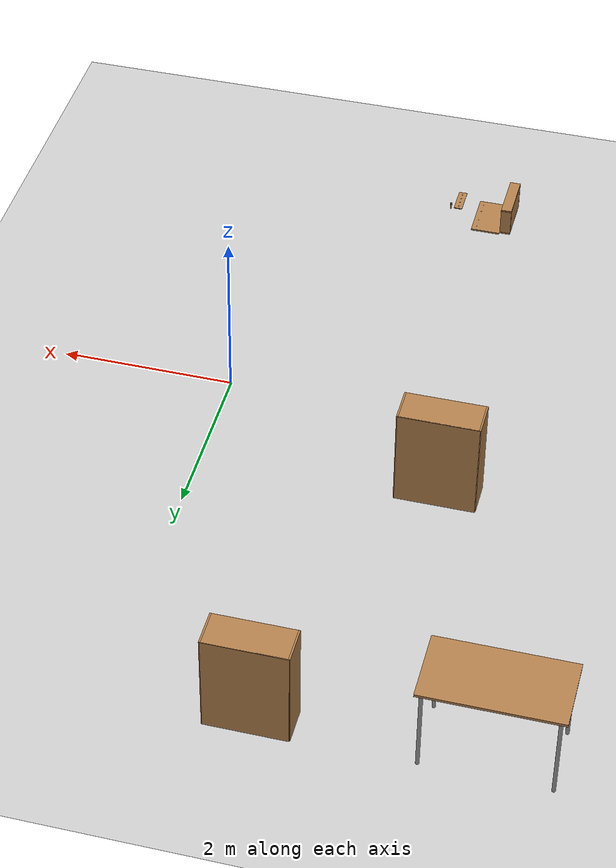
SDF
<sdf version="1.6">
 <world name="default">
  <model name="ground_plane">
   <static>1</static>
   <link name="link">
    <collision name="collision">
     <geometry><plane><normal>0 0 1</normal><size>100 100</size></plane></geometry>
     <surface>
      <contact><collide_bitmask>65535</collide_bitmask></contact>
      <friction><ode><mu>100</mu><mu2>50</mu2></ode></friction>
     </surface>
    </collision>
    <visual name="visual">
     <cast_shadows>0</cast_shadows>
     <geometry><plane><normal>0 0 1</normal><size>100 100</size></plane></geometry>
     <material>
      <script><uri>file://media/materials/scripts/gazebo.material</uri><name>Gazebo/Grey</name></script>
     </material>
    </visual>
   </link>
  </model>
  <model name="bookshelf">
   <static>1</static>
   <link name="link">
    <inertial><mass>1</mass></inertial>
    <collision name="back">
     <pose>0 0.005 0.6 0 -0 0</pose>
     <geometry><box><size>0.9 0.01 1.2</size></box></geometry>
    </collision>
    <visual name="visual1">
     <pose>0 0.005 0.6 0 -0 0</pose>
     <geometry><box><size>0.9 0.01 1.2</size></box></geometry>
     <material>
      <script><uri>file://media/materials/scripts/gazebo.material</uri><name>Gazebo/Wood</name></script>
     </material>
    </visual>
    <collision name="left_side">
     <pose>0.45 -0.195 0.6 0 -0 0</pose>
     <geometry><box><size>0.02 0.4 1.2</size></box></geometry>
    </collision>
    <visual name="visual2">
     <pose>0.45 -0.195 0.6 0 -0 0</pose>
     <geometry><box><size>0.02 0.4 1.2</size></box></geometry>
     <material>
      <script><uri>file://media/materials/scripts/gazebo.material</uri><name>Gazebo/Wood</name></script>
     </material>
    </visual>
    <collision name="right_side">
     <pose>-0.45 -0.195 0.6 0 -0 0</pose>
     <geometry><box><size>0.02 0.4 1.2</size></box></geometry>
    </collision>
    <visual name="visual3">
     <pose>-0.45 -0.195 0.6 0 -0 0</pose>
     <geometry><box><size>0.02 0.4 1.2</size></box></geometry>
     <material>
      <script><uri>file://media/materials/scripts/gazebo.material</uri><name>Gazebo/Wood</name></script>
     </material>
    </visual>
    <collision name="bottom">
     <pose>0 -0.195 0.03 0 -0 0</pose>
     <geometry><box><size>0.88 0.4 0.06</size></box></geometry>
    </collision>
    <visual name="visual4">
     <pose>0 -0.195 0.03 0 -0 0</pose>
     <geometry><box><size>0.88 0.4 0.06</size></box></geometry>
     <material>
      <script><uri>file://media/materials/scripts/gazebo.material</uri><name>Gazebo/Wood</name></script>
     </material>
    </visual>
    <collision name="top">
     <pose>0 -0.195 1.19 0 -0 0</pose>
     <geometry><box><size>0.88 0.4 0.02</size></box></geometry>
    </collision>
    <visual name="visual5">
     <pose>0 -0.195 1.19 0 -0 0</pose>
     <geometry><box><size>0.88 0.4 0.02</size></box></geometry>
     <material>
      <script><uri>file://media/materials/scripts/gazebo.material</uri><name>Gazebo/Wood</name></script>
     </material>
    </visual>
    <collision name="low_shelf">
     <pose>0 -0.195 0.43 0 -0 0</pose>
     <geometry><box><size>0.88 0.4 0.02</size></box></geometry>
    </collision>
    <visual name="visual6">
     <pose>0 -0.195 0.43 0 -0 0</pose>
     <geometry><box><size>0.88 0.4 0.02</size></box></geometry>
     <material>
      <script><uri>file://media/materials/scripts/gazebo.material</uri><name>Gazebo/Wood</name></script>
     </material>
    </visual>
    <collision name="high_shelf">
     <pose>0 -0.195 0.8 0 -0 0</pose>
     <geometry><box><size>0.88 0.4 0.02</size></box></geometry>
    </collision>
    <visual name="visual7">
     <pose>0 -0.195 0.8 0 -0 0</pose>
     <geometry><box><size>0.88 0.4 0.02</size></box></geometry>
     <material>
      <script><uri>file://media/materials/scripts/gazebo.material</uri><name>Gazebo/Wood</name></script>
     </material>
    </visual>
   </link>
   <pose>-2.68628 1.36216 0 0 -0 0</pose>
  </model>
  <model name="bookshelf_1">
   <static>1</static>
   <link name="link">
    <inertial><mass>1</mass></inertial>
    <collision name="back">
     <pose>0 0.005 0.6 0 -0 0</pose>
     <geometry><box><size>0.9 0.01 1.2</size></box></geometry>
    </collision>
    <visual name="visual1">
     <pose>0 0.005 0.6 0 -0 0</pose>
     <geometry><box><size>0.9 0.01 1.2</size></box></geometry>
     <material>
      <script><uri>file://media/materials/scripts/gazebo.material</uri><name>Gazebo/Wood</name></script>
     </material>
    </visual>
    <collision name="left_side">
     <pose>0.45 -0.195 0.6 0 -0 0</pose>
     <geometry><box><size>0.02 0.4 1.2</size></box></geometry>
    </collision>
    <visual name="visual2">
     <pose>0.45 -0.195 0.6 0 -0 0</pose>
     <geometry><box><size>0.02 0.4 1.2</size></box></geometry>
     <material>
      <script><uri>file://media/materials/scripts/gazebo.material</uri><name>Gazebo/Wood</name></script>
     </material>
    </visual>
    <collision name="right_side">
     <pose>-0.45 -0.195 0.6 0 -0 0</pose>
     <geometry><box><size>0.02 0.4 1.2</size></box></geometry>
    </collision>
    <visual name="visual3">
     <pose>-0.45 -0.195 0.6 0 -0 0</pose>
     <geometry><box><size>0.02 0.4 1.2</size></box></geometry>
     <material>
      <script><uri>file://media/materials/scripts/gazebo.material</uri><name>Gazebo/Wood</name></script>
     </material>
    </visual>
    <collision name="bottom">
     <pose>0 -0.195 0.03 0 -0 0</pose>
     <geometry><box><size>0.88 0.4 0.06</size></box></geometry>
    </collision>
    <visual name="visual4">
     <pose>0 -0.195 0.03 0 -0 0</pose>
     <geometry><box><size>0.88 0.4 0.06</size></box></geometry>
     <material>
      <script><uri>file://media/materials/scripts/gazebo.material</uri><name>Gazebo/Wood</name></script>
     </material>
    </visual>
    <collision name="top">
     <pose>0 -0.195 1.19 0 -0 0</pose>
     <geometry><box><size>0.88 0.4 0.02</size></box></geometry>
    </collision>
    <visual name="visual5">
     <pose>0 -0.195 1.19 0 -0 0</pose>
     <geometry><box><size>0.88 0.4 0.02</size></box></geometry>
     <material>
      <script><uri>file://media/materials/scripts/gazebo.material</uri><name>Gazebo/Wood</name></script>
     </material>
    </visual>
    <collision name="low_shelf">
     <pose>0 -0.195 0.43 0 -0 0</pose>
     <geometry><box><size>0.88 0.4 0.02</size></box></geometry>
    </collision>
    <visual name="visual6">
     <pose>0 -0.195 0.43 0 -0 0</pose>
     <geometry><box><size>0.88 0.4 0.02</size></box></geometry>
     <material>
      <script><uri>file://media/materials/scripts/gazebo.material</uri><name>Gazebo/Wood</name></script>
     </material>
    </visual>
    <collision name="high_shelf">
     <pose>0 -0.195 0.8 0 -0 0</pose>
     <geometry><box><size>0.88 0.4 0.02</size></box></geometry>
    </collision>
    <visual name="visual7">
     <pose>0 -0.195 0.8 0 -0 0</pose>
     <geometry><box><size>0.88 0.4 0.02</size></box></geometry>
     <material>
      <script><uri>file://media/materials/scripts/gazebo.material</uri><name>Gazebo/Wood</name></script>
     </material>
    </visual>
   </link>
   <pose>-1.56619 5.02247 0 0 -0 0</pose>
  </model>
  <model name="wooden_peg">
   <link name="link">
    <pose>0 0 0.04 0 -0 0</pose>
    <inertial>
     <mass>0.0175</mass>
     <inertia>
      <ixx>9.74923e-06</ixx>
      <ixy>0</ixy>
      <ixz>0</ixz>
      <iyy>9.74923e-06</iyy>
      <iyz>0</iyz>
      <izz>8.31797e-07</izz>
     </inertia>
    </inertial>
    <collision name="collision">
     <geometry><cylinder><radius>0.00975</radius><length>0.08</length></cylinder></geometry>
     <surface>
      <contact>
       <poissons_ratio>0.347</poissons_ratio>
       <elastic_modulus>8.8e+09</elastic_modulus>
       <ode><kp>100000</kp><kd>100</kd><max_vel>100</max_vel><min_depth>0.001</min_depth></ode>
      </contact>
      <friction>
       <torsional>
        <coefficient>1</coefficient>
        <use_patch_radius>0</use_patch_radius>
        <surface_radius>0.01</surface_radius>
       </torsional>
      </friction>
     </surface>
    </collision>
    <visual name="visual">
     <geometry><cylinder><radius>0.00975</radius><length>0.08</length></cylinder></geometry>
     <material>
      <script><uri>file://media/materials/scripts/gazebo.material</uri><name>Gazebo/Wood</name></script>
     </material>
    </visual>
   </link>
   <pose>-1.75369 -3.9029 -0.001 0 -0 0</pose>
  </model>
  <model name="wooden_case">
   <link name="base">
    <pose>0 0 0.024 0 -0 0</pose>
    <inertial>
     <pose>-0.022184 0 0.171592 0 -0 0</pose>
     <mass>3.96264</mass>
     <inertia>
      <ixx>0.213536</ixx>
      <ixy>0</ixy>
      <ixz>0.000779377</ixz>
      <iyy>0.0708943</iyy>
      <iyz>0</iyz>
      <izz>0.154604</izz>
     </inertia>
    </inertial>
    <collision name="collision_back">
     <pose>-0.053975 0 0.1778 0 -0 0</pose>
     <geometry><box><size>0.01905 0.5461 0.3175</size></box></geometry>
     <surface>
      <contact>
       <poissons_ratio>0.347</poissons_ratio>
       <elastic_modulus>8.8e+09</elastic_modulus>
       <ode><kp>100000</kp><kd>100</kd><max_vel>100</max_vel><min_depth>0.001</min_depth></ode>
      </contact>
      <friction>
       <torsional>
        <coefficient>1</coefficient>
        <use_patch_radius>0</use_patch_radius>
        <surface_radius>0.01</surface_radius>
       </torsional>
      </friction>
     </surface>
    </collision>
    <visual name="visual_back">
     <pose>-0.053975 0 0.1778 0 -0 0</pose>
     <geometry><box><size>0.01905 0.5461 0.3175</size></box></geometry>
     <material>
      <script><uri>file://media/materials/scripts/gazebo.material</uri><name>Gazebo/Wood</name></script>
     </material>
    </visual>
    <collision name="collision_bottom">
     <pose>0 0 0.009525 0 -0 0</pose>
     <geometry><box><size>0.127 0.5842 0.01905</size></box></geometry>
     <surface>
      <contact>
       <poissons_ratio>0.347</poissons_ratio>
       <elastic_modulus>8.8e+09</elastic_modulus>
       <ode><kp>100000</kp><kd>100</kd><max_vel>100</max_vel><min_depth>0.001</min_depth></ode>
      </contact>
      <friction>
       <torsional>
        <coefficient>1</coefficient>
        <use_patch_radius>0</use_patch_radius>
        <surface_radius>0.01</surface_radius>
       </torsional>
      </friction>
     </surface>
    </collision>
    <visual name="visual_bottom">
     <pose>0 0 0.009525 0 -0 0</pose>
     <geometry><box><size>0.127 0.5842 0.01905</size></box></geometry>
     <material>
      <script><uri>file://media/materials/scripts/gazebo.material</uri><name>Gazebo/Wood</name></script>
     </material>
    </visual>
    <collision name="collision_top">
     <pose>0 0 0.346075 0 -0 0</pose>
     <geometry><box><size>0.127 0.5842 0.01905</size></box></geometry>
     <surface>
      <contact>
       <poissons_ratio>0.347</poissons_ratio>
       <elastic_modulus>8.8e+09</elastic_modulus>
       <ode><kp>100000</kp><kd>100</kd><max_vel>100</max_vel><min_depth>0.001</min_depth></ode>
      </contact>
      <friction>
       <torsional>
        <coefficient>1</coefficient>
        <use_patch_radius>0</use_patch_radius>
        <surface_radius>0.01</surface_radius>
       </torsional>
      </friction>
     </surface>
    </collision>
    <visual name="visual_top">
     <pose>0 0 0.346075 0 -0 0</pose>
     <geometry><box><size>0.127 0.5842 0.01905</size></box></geometry>
     <material>
      <script><uri>file://media/materials/scripts/gazebo.material</uri><name>Gazebo/Wood</name></script>
     </material>
    </visual>
    <collision name="collision_left">
     <pose>0 -0.282575 0.1778 0 -0 0</pose>
     <geometry><box><size>0.127 0.01905 0.3175</size></box></geometry>
     <surface>
      <contact>
       <poissons_ratio>0.347</poissons_ratio>
       <elastic_modulus>8.8e+09</elastic_modulus>
       <ode><kp>100000</kp><kd>100</kd><max_vel>100</max_vel><min_depth>0.001</min_depth></ode>
      </contact>
      <friction>
       <torsional>
        <coefficient>1</coefficient>
        <use_patch_radius>0</use_patch_radius>
        <surface_radius>0.01</surface_radius>
       </torsional>
      </friction>
     </surface>
    </collision>
    <visual name="visual_left">
     <pose>0 -0.282575 0.1778 0 -0 0</pose>
     <geometry><box><size>0.127 0.01905 0.3175</size></box></geometry>
     <material>
      <script><uri>file://media/materials/scripts/gazebo.material</uri><name>Gazebo/Wood</name></script>
     </material>
    </visual>
    <collision name="collision_right">
     <pose>0 0.282575 0.1778 0 -0 0</pose>
     <geometry><box><size>0.127 0.01905 0.3175</size></box></geometry>
     <surface>
      <contact>
       <poissons_ratio>0.347</poissons_ratio>
       <elastic_modulus>8.8e+09</elastic_modulus>
       <ode><kp>100000</kp><kd>100</kd><max_vel>100</max_vel><min_depth>0.001</min_depth></ode>
      </contact>
      <friction>
       <torsional>
        <coefficient>1</coefficient>
        <use_patch_radius>0</use_patch_radius>
        <surface_radius>0.01</surface_radius>
       </torsional>
      </friction>
     </surface>
    </collision>
    <visual name="visual_right">
     <pose>0 0.282575 0.1778 0 -0 0</pose>
     <geometry><box><size>0.127 0.01905 0.3175</size></box></geometry>
     <material>
      <script><uri>file://media/materials/scripts/gazebo.material</uri><name>Gazebo/Wood</name></script>
     </material>
    </visual>
    <collision name="collision_block_left">
     <pose>0.0095 -0.2151 -0.012 0 -0 0</pose>
     <geometry><box><size>0.108 0.05 0.024</size></box></geometry>
     <surface>
      <contact>
       <poissons_ratio>0.347</poissons_ratio>
       <elastic_modulus>8.8e+09</elastic_modulus>
       <ode><kp>100000</kp><kd>100</kd><max_vel>100</max_vel><min_depth>0.001</min_depth></ode>
      </contact>
      <friction>
       <torsional>
        <coefficient>1</coefficient>
        <use_patch_radius>0</use_patch_radius>
        <surface_radius>0.01</surface_radius>
       </torsional>
      </friction>
     </surface>
    </collision>
    <visual name="visual_block_left">
     <pose>0.0095 -0.2151 -0.012 0 -0 0</pose>
     <geometry><box><size>0.108 0.05 0.024</size></box></geometry>
     <material>
      <script><uri>file://media/materials/scripts/gazebo.material</uri><name>Gazebo/Wood</name></script>
     </material>
    </visual>
    <collision name="collision_block_right">
     <pose>0.0095 0.2151 -0.012 0 -0 0</pose>
     <geometry><box><size>0.108 0.05 0.024</size></box></geometry>
     <surface>
      <contact>
       <poissons_ratio>0.347</poissons_ratio>
       <elastic_modulus>8.8e+09</elastic_modulus>
       <ode><kp>100000</kp><kd>100</kd><max_vel>100</max_vel><min_depth>0.001</min_depth></ode>
      </contact>
      <friction>
       <torsional>
        <coefficient>1</coefficient>
        <use_patch_radius>0</use_patch_radius>
        <surface_radius>0.01</surface_radius>
       </torsional>
      </friction>
     </surface>
    </collision>
    <visual name="visual_block_right">
     <pose>0.0095 0.2151 -0.012 0 -0 0</pose>
     <geometry><box><size>0.108 0.05 0.024</size></box></geometry>
     <material>
      <script><uri>file://media/materials/scripts/gazebo.material</uri><name>Gazebo/Wood</name></script>
     </material>
    </visual>
   </link>
   <link name="lid">
    <pose>0.243775 0 0.009525 0 -0 0</pose>
    <inertial>
     <mass>1.97874</mass>
     <inertia>
      <ixx>0.0563367</ixx>
      <ixy>0</ixy>
      <ixz>0</ixz>
      <iyy>0.020911</iyy>
      <iyz>0</iyz>
      <izz>0.0771281</izz>
     </inertia>
    </inertial>
    <collision name="collision">
     <geometry><box><size>0.3556 0.5842 0.01905</size></box></geometry>
     <surface>
      <contact>
       <poissons_ratio>0.347</poissons_ratio>
       <elastic_modulus>8.8e+09</elastic_modulus>
       <ode><kp>100000</kp><kd>100</kd><max_vel>100</max_vel><min_depth>0.001</min_depth></ode>
      </contact>
      <friction>
       <torsional>
        <coefficient>1</coefficient>
        <use_patch_radius>0</use_patch_radius>
        <surface_radius>0.01</surface_radius>
       </torsional>
      </friction>
     </surface>
    </collision>
    <visual name="visual">
     <geometry><box><size>0.3556 0.5842 0.01905</size></box></geometry>
     <material>
      <script><uri>file://media/materials/scripts/gazebo.material</uri><name>Gazebo/Wood</name></script>
     </material>
    </visual>
    <visual name="tee_nut_1">
     <pose>0.122 -0.216 0 0 -0 0</pose>
     <geometry><cylinder><radius>0.00635</radius><length>0.0192405</length></cylinder></geometry>
     <material>
      <script><uri>file://media/materials/scripts/gazebo.material</uri><name>Gazebo/Grey</name></script>
     </material>
    </visual>
    <visual name="tee_nut_2">
     <pose>0.122 -0.088 0 0 -0 0</pose>
     <geometry><cylinder><radius>0.00635</radius><length>0.0192405</length></cylinder></geometry>
     <material>
      <script><uri>file://media/materials/scripts/gazebo.material</uri><name>Gazebo/Grey</name></script>
     </material>
    </visual>
    <visual name="tee_nut_3">
     <pose>0.122 0.088 0 0 -0 0</pose>
     <geometry><cylinder><radius>0.00635</radius><length>0.0192405</length></cylinder></geometry>
     <material>
      <script><uri>file://media/materials/scripts/gazebo.material</uri><name>Gazebo/Grey</name></script>
     </material>
    </visual>
    <visual name="tee_nut_4">
     <pose>0.122 0.216 0 0 -0 0</pose>
     <geometry><cylinder><radius>0.00635</radius><length>0.0192405</length></cylinder></geometry>
     <material>
      <script><uri>file://media/materials/scripts/gazebo.material</uri><name>Gazebo/Grey</name></script>
     </material>
    </visual>
   </link>
   <joint name="lid_hinge" type="revolute">
    <pose>-0.1778 0 0.01905 0 -0 0</pose>
    <parent>base</parent>
    <child>lid</child>
    <axis>
     <xyz>0 1 0</xyz>
     <limit><upper>0.523599</upper><lower>-1.5708</lower></limit>
     <use_parent_model_frame>0</use_parent_model_frame>
     <dynamics><spring_reference>0</spring_reference><spring_stiffness>0</spring_stiffness></dynamics>
    </axis>
   </joint>
   <pose>-2.50845 -3.82071 -0.001057 0 -0.000426 0</pose>
  </model>
  <model name="table">
   <static>1</static>
   <link name="link">
    <collision name="surface">
     <pose>0 0 1 0 -0 0</pose>
     <geometry><box><size>1.5 0.8 0.03</size></box></geometry>
     <surface><friction><ode><mu>0.6</mu><mu2>0.6</mu2></ode></friction></surface>
    </collision>
    <visual name="visual1">
     <pose>0 0 1 0 -0 0</pose>
     <geometry><box><size>1.5 0.8 0.03</size></box></geometry>
     <material>
      <script><uri>file://media/materials/scripts/gazebo.material</uri><name>Gazebo/Wood</name></script>
     </material>
    </visual>
    <collision name="front_left_leg">
     <pose>0.68 0.38 0.5 0 -0 0</pose>
     <geometry><cylinder><radius>0.02</radius><length>1</length></cylinder></geometry>
    </collision>
    <visual name="front_left_leg">
     <pose>0.68 0.38 0.5 0 -0 0</pose>
     <geometry><cylinder><radius>0.02</radius><length>1</length></cylinder></geometry>
     <material>
      <script><uri>file://media/materials/scripts/gazebo.material</uri><name>Gazebo/Grey</name></script>
     </material>
    </visual>
    <collision name="front_right_leg">
     <pose>0.68 -0.38 0.5 0 -0 0</pose>
     <geometry><cylinder><radius>0.02</radius><length>1</length></cylinder></geometry>
    </collision>
    <visual name="front_right_leg">
     <pose>0.68 -0.38 0.5 0 -0 0</pose>
     <geometry><cylinder><radius>0.02</radius><length>1</length></cylinder></geometry>
     <material>
      <script><uri>file://media/materials/scripts/gazebo.material</uri><name>Gazebo/Grey</name></script>
     </material>
    </visual>
    <collision name="back_right_leg">
     <pose>-0.68 -0.38 0.5 0 -0 0</pose>
     <geometry><cylinder><radius>0.02</radius><length>1</length></cylinder></geometry>
    </collision>
    <visual name="back_right_leg">
     <pose>-0.68 -0.38 0.5 0 -0 0</pose>
     <geometry><cylinder><radius>0.02</radius><length>1</length></cylinder></geometry>
     <material>
      <script><uri>file://media/materials/scripts/gazebo.material</uri><name>Gazebo/Grey</name></script>
     </material>
    </visual>
    <collision name="back_left_leg">
     <pose>-0.68 0.38 0.5 0 -0 0</pose>
     <geometry><cylinder><radius>0.02</radius><length>1</length></cylinder></geometry>
    </collision>
    <visual name="back_left_leg">
     <pose>-0.68 0.38 0.5 0 -0 0</pose>
     <geometry><cylinder><radius>0.02</radius><length>1</length></cylinder></geometry>
     <material>
      <script><uri>file://media/materials/scripts/gazebo.material</uri><name>Gazebo/Grey</name></script>
     </material>
    </visual>
   </link>
   <pose>-3.98562 4.59139 0 0 -0 0</pose>
  </model>
  <model name="wooden_board_0">
   <link name="base">
    <pose>0 0 0.00523 0 -0 0</pose>
    <inertial>
     <mass>0.2765</mass>
     <inertia>
      <ixx>0.0025148</ixx>
      <ixy>0</ixy>
      <ixz>0</ixz>
      <iyy>0.00024037</iyy>
      <iyz>0</iyz>
      <izz>0.00275013</izz>
     </inertia>
    </inertial>
    <collision name="collision">
     <geometry><box><size>0.1016 0.3302 0.01046</size></box></geometry>
     <surface>
      <contact>
       <poissons_ratio>0.347</poissons_ratio>
       <elastic_modulus>8.8e+09</elastic_modulus>
       <ode><kp>100000</kp><kd>100</kd><max_vel>100</max_vel><min_depth>0.001</min_depth></ode>
      </contact>
      <friction>
       <torsional>
        <coefficient>1</coefficient>
        <use_patch_radius>0</use_patch_radius>
        <surface_radius>0.01</surface_radius>
       </torsional>
      </friction>
     </surface>
    </collision>
    <visual name="visual">
     <geometry><box><size>0.1016 0.3302 0.01046</size></box></geometry>
     <material>
      <script><uri>file://media/materials/scripts/gazebo.material</uri><name>Gazebo/Wood</name></script>
     </material>
    </visual>
    <visual name="tee_nut_1">
     <pose>0 -0.116 0 0 -0 0</pose>
     <geometry><cylinder><radius>0.00635</radius><length>0.0105646</length></cylinder></geometry>
     <material>
      <script><uri>file://media/materials/scripts/gazebo.material</uri><name>Gazebo/Grey</name></script>
     </material>
    </visual>
    <visual name="tee_nut_2">
     <pose>0 -0.038 0 0 -0 0</pose>
     <geometry><cylinder><radius>0.00635</radius><length>0.0105646</length></cylinder></geometry>
     <material>
      <script><uri>file://media/materials/scripts/gazebo.material</uri><name>Gazebo/Grey</name></script>
     </material>
    </visual>
    <visual name="tee_nut_3">
     <pose>0 0.038 0 0 -0 0</pose>
     <geometry><cylinder><radius>0.00635</radius><length>0.0105646</length></cylinder></geometry>
     <material>
      <script><uri>file://media/materials/scripts/gazebo.material</uri><name>Gazebo/Grey</name></script>
     </material>
    </visual>
    <visual name="tee_nut_4">
     <pose>0 0.116 0 0 -0 0</pose>
     <geometry><cylinder><radius>0.00635</radius><length>0.0105646</length></cylinder></geometry>
     <material>
      <script><uri>file://media/materials/scripts/gazebo.material</uri><name>Gazebo/Grey</name></script>
     </material>
    </visual>
   </link>
   <pose>-1.84111 -4.07472 -0.001007 0 -0 0</pose>
  </model>
 </world>
</sdf>
